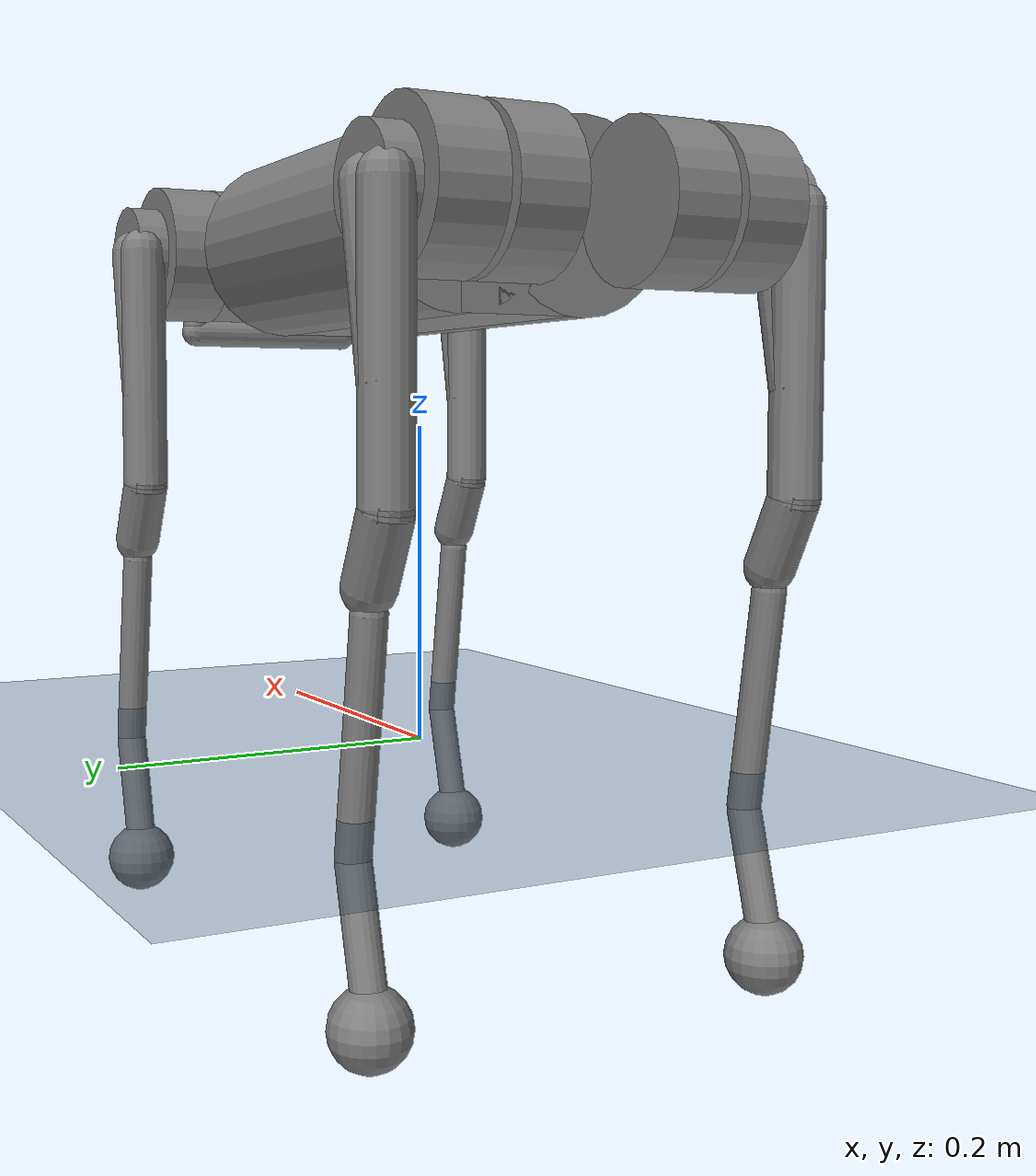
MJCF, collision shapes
<mujoco model="go1 scene">
  <include file="go1.xml"/>

  <statistic center="0 0 0" extent="0.8"/>

  <visual>
    <headlight diffuse="0.6 0.6 0.6" ambient="0.3 0.3 0.3" specular="0 0 0"/>
    <rgba haze="0.15 0.25 0.35 1"/>
    <global azimuth="120" elevation="-20"/>
  </visual>

  <asset>
    <texture type="skybox" builtin="gradient" rgb1="0.3 0.5 0.7" rgb2="0 0 0" width="512" height="3072"/>
    <texture type="2d" name="groundplane" builtin="checker" mark="edge" rgb1="0.2 0.3 0.4" rgb2="0.1 0.2 0.3"
      markrgb="0.8 0.8 0.8" width="300" height="300"/>
    <material name="groundplane" texture="groundplane" texuniform="true" texrepeat="5 5" reflectance="0.2"/>
  </asset>

  <worldbody>
    <light pos="0 0 1.5" dir="0 0 -1" directional="true"/>
    <geom name="floor" size="0 0 0.05" type="plane" material="groundplane"/>
  </worldbody>
</mujoco>

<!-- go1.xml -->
<mujoco model="go1_description">
    <compiler angle="radian" autolimits="true"/>

    <option cone="elliptic" impratio="100"/>

    <default>
        <default class="go1">
            <geom friction="0.6" margin="0.001" condim="1"/>
            <joint axis="0 1 0" damping="0.6" armature="0.01" frictionloss="0.2"/>
            <position kp="100" forcerange="-23.7 23.7"/>
            <default class="abduction">
                <joint axis="1 0 0" damping="1" range="-0.863 0.863"/>
                <motor ctrlrange="-45.43 45.43"/>
            </default>
            <default class="hip">
                <joint range="-0.686 4.501"/>
                <motor ctrlrange="-45.43 45.43"/>
            </default>
            <default class="knee">
                <joint range="-2.818 -0.888"/>
                <motor ctrlrange="-45.43 45.43"/>
            </default>
            <default class="visual">
                <geom type="mesh" contype="0" conaffinity="0" group="2" material="dark"/>
            </default>
            <default class="collision">
                <geom group="3" type="capsule"/>
                <default class="hip_left1">
                    <geom size="0.046 0.02" pos="0 0.045 0" quat="1 1 0 0" type="cylinder"/>
                </default>
                <default class="hip_left2">
                    <geom size="0.031 0.02" pos="0 0.065 0" quat="1 1 0 0" type="cylinder"/>
                </default>
                <default class="hip_left3">
                    <geom size="0.046 0.02" quat="1 1 0 0" type="cylinder"/>
                </default>
                <default class="hip_right1">
                    <geom size="0.046 0.02" pos="0 -0.045 0" quat="1 1 0 0" type="cylinder"/>
                </default>
                <default class="hip_right2">
                    <geom size="0.031 0.02" pos="0 -0.065 0" quat="1 1 0 0" type="cylinder"/>
                </default>
                <default class="hip_right3">
                    <geom size="0.046 0.02" quat="1 1 0 0" type="cylinder"/>
                </default>
                <default class="thigh1">
                    <geom size="0.015" fromto="-0.02 0 0 -0.02 0 -0.16"/>
                </default>
                <default class="thigh2">
                    <geom size="0.015" fromto="0 0 0 -0.02 0 -0.1"/>
                </default>
                <default class="thigh3">
                    <geom size="0.015" fromto="-0.02 0 -0.16 0 0 -0.2"/>
                </default>
                <default class="calf1">
                    <geom size="0.01" fromto="0 0 0 0.02 0 -0.13"/>
                </default>
                <default class="calf2">
                    <geom size="0.01" fromto="0.02 0 -0.13 0 0 -0.2"/>
                </default>
                <default class="foot">
                    <geom type="sphere" size="0.023" pos="0 0 -0.213" priority="1" solimp="0.015 1 0.031" condim="6"
                          friction="0.8 0.02 0.01"/>
                </default>
            </default>
        </default>
    </default>

    <asset>
        <material name="dark" rgba="0.1 0.1 0.1 1"/>
        <mesh class="go1" file="assets/trunk.stl"/>
        <mesh class="go1" file="assets/hip.stl"/>
        <mesh class="go1" file="assets/thigh_mirror.stl"/>
        <mesh class="go1" file="assets/calf.stl"/>
        <mesh class="go1" file="assets/thigh.stl"/>
    </asset>

    <worldbody>
        <light name="spotlight" mode="targetbodycom" target="trunk" pos="0 -1 2"/>
        <body name="trunk" pos="0 0 0.32" childclass="go1">
            <camera name="tracking" mode="trackcom" pos="0 -1 0.8" xyaxes="1 0 0 0 1 1"/>
            <site name="head" pos="0.3 0 0" rgba="1 0 0 1" size="0.02" group="5"/>
            <inertial pos="0.0223 0.002 -0.0005" quat="-0.00342088 0.705204 0.000106698 0.708996" mass="5.204"
                      diaginertia="0.0716565 0.0630105 0.0168101"/>
            <freejoint/>
            <geom class="visual" mesh="trunk"/>
            <geom class="collision" size="0.125 0.04 0.057" type="box"/>
            <geom class="collision" quat="1 0 1 0" pos="0 -0.04 0" size="0.058 0.125" type="cylinder"/>
            <geom class="collision" quat="1 0 1 0" pos="0 +0.04 0" size="0.058 0.125" type="cylinder"/>
            <geom class="collision" pos="0.25 0 0" size="0.005 0.06 0.05" type="box"/>
            <geom class="collision" pos="0.25 0.06 -0.01" size="0.009 0.035"/>
            <geom class="collision" pos="0.25 -0.06 -0.01" size="0.009 0.035"/>
            <geom class="collision" pos="0.25 0 -0.05" size="0.01 0.06" quat="1 1 0 0"/>
            <geom class="collision" pos="0.255 0 0.0355" size="0.021 0.052" quat="1 1 0 0"/>
            <site name="imu" pos="0 0 0"/>
            <body name="FL_hip" pos="0.1881 0.04675 0">
                <inertial pos="-0.0049166 -0.00762615 -8.865e-05" quat="0.482891 0.495027 0.514169 0.507341" mass="0.68"
                          diaginertia="0.000734064 0.000468438 0.000398719"/>
                <joint class="abduction" name="FL_hip_joint"/>
                <geom class="visual" mesh="hip"/>
                <geom class="hip_left1"/>
                <geom class="hip_left2"/>
                <body name="FL_thigh" pos="0 0.08 0">
                    <inertial pos="-0.00304722 -0.019315 -0.0305004" quat="0.753383 0.0775126 -0.0272313 0.65243"
                              mass="1.009"
                              diaginertia="0.00478717 0.00460903 0.000709268"/>
                    <joint class="hip" name="FL_thigh_joint"/>
                    <geom class="visual" mesh="thigh"/>
                    <geom class="thigh1"/>
                    <geom class="thigh2"/>
                    <geom class="thigh3"/>
                    <body name="FL_calf" pos="0 0 -0.213">
                        <inertial pos="0.00429862 0.000976676 -0.146197" quat="0.691246 0.00357467 0.00511118 0.722592"
                                  mass="0.195862" diaginertia="0.00149767 0.00148468 3.58427e-05"/>
                        <joint class="knee" name="FL_calf_joint"/>
                        <geom class="visual" mesh="calf"/>
                        <geom class="calf1"/>
                        <geom class="calf2"/>
                        <geom name="FL" class="foot"/>
                        <site name="FL" pos="0 0 -0.213" type="sphere" size="0.023" group="5"/>
                    </body>
                </body>
            </body>

            <body name="FR_hip" pos="0.1881 -0.04675 0">
                <inertial pos="-0.0049166 0.00762615 -8.865e-05" quat="0.507341 0.514169 0.495027 0.482891" mass="0.68"
                          diaginertia="0.000734064 0.000468438 0.000398719"/>
                <joint class="abduction" name="FR_hip_joint"/>
                <geom class="visual" mesh="hip" quat="1 0 0 0"/>
                <geom class="hip_right1"/>
                <geom class="hip_right2"/>
                <body name="FR_thigh" pos="0 -0.08 0">
                    <inertial pos="-0.00304722 0.019315 -0.0305004" quat="0.65243 -0.0272313 0.0775126 0.753383"
                              mass="1.009"
                              diaginertia="0.00478717 0.00460903 0.000709268"/>
                    <joint class="hip" name="FR_thigh_joint"/>
                    <geom class="visual" mesh="thigh_mirror"/>
                    <geom class="thigh1"/>
                    <geom class="thigh2"/>
                    <geom class="thigh3"/>
                    <body name="FR_calf" pos="0 0 -0.213">
                        <inertial pos="0.00429862 0.000976676 -0.146197" quat="0.691246 0.00357467 0.00511118 0.722592"
                                  mass="0.195862" diaginertia="0.00149767 0.00148468 3.58427e-05"/>
                        <joint class="knee" name="FR_calf_joint"/>
                        <geom class="visual" mesh="calf"/>
                        <geom class="calf1"/>
                        <geom class="calf2"/>
                        <geom name="FR" class="foot"/>
                        <site name="FR" pos="0 0 -0.213" type="sphere" size="0.023" group="5"/>
                    </body>
                </body>
            </body>

            <body name="RL_hip" pos="-0.1881 0.04675 0">
                <inertial pos="0.0049166 -0.00762615 -8.865e-05" quat="0.514169 0.507341 0.482891 0.495027" mass="0.68"
                          diaginertia="0.000734064 0.000468438 0.000398719"/>
                <joint class="abduction" name="RL_hip_joint"/>
                <geom class="visual" quat="0 0 1 0" mesh="hip"/>
                <geom class="hip_left1"/>
                <geom class="hip_left2"/>
                <geom class="hip_left3"/>
                <body name="RL_thigh" pos="0 0.08 0">
                    <inertial pos="-0.00304722 -0.019315 -0.0305004" quat="0.753383 0.0775126 -0.0272313 0.65243"
                              mass="1.009"
                              diaginertia="0.00478717 0.00460903 0.000709268"/>
                    <joint class="hip" name="RL_thigh_joint"/>
                    <geom class="visual" mesh="thigh"/>
                    <geom class="thigh1"/>
                    <geom class="thigh2"/>
                    <geom class="thigh3"/>
                    <body name="RL_calf" pos="0 0 -0.213">
                        <inertial pos="0.00429862 0.000976676 -0.146197" quat="0.691246 0.00357467 0.00511118 0.722592"
                                  mass="0.195862" diaginertia="0.00149767 0.00148468 3.58427e-05"/>
                        <joint class="knee" name="RL_calf_joint"/>
                        <geom class="visual" mesh="calf"/>
                        <geom class="calf1"/>
                        <geom class="calf2"/>
                        <geom name="RL" class="foot"/>
                        <site name="RL" pos="0 0 -0.213" type="sphere" size="0.023" group="5"/>
                    </body>
                </body>
            </body>

            <body name="RR_hip" pos="-0.1881 -0.04675 0">
                <inertial pos="0.0049166 0.00762615 -8.865e-05" quat="0.495027 0.482891 0.507341 0.514169" mass="0.68"
                          diaginertia="0.000734064 0.000468438 0.000398719"/>
                <joint class="abduction" name="RR_hip_joint"/>
                <geom class="visual" quat="0 0 0 -1" mesh="hip"/>
                <geom class="hip_right1"/>
                <geom class="hip_right2"/>
                <geom class="hip_right3"/>
                <body name="RR_thigh" pos="0 -0.08 0">
                    <inertial pos="-0.00304722 0.019315 -0.0305004" quat="0.65243 -0.0272313 0.0775126 0.753383"
                              mass="1.009"
                              diaginertia="0.00478717 0.00460903 0.000709268"/>
                    <joint class="hip" name="RR_thigh_joint"/>
                    <geom class="visual" mesh="thigh_mirror"/>
                    <geom class="thigh1"/>
                    <geom class="thigh2"/>
                    <geom class="thigh3"/>
                    <body name="RR_calf" pos="0 0 -0.213">
                        <inertial pos="0.00429862 0.000976676 -0.146197" quat="0.691246 0.00357467 0.00511118 0.722592"
                                  mass="0.195862" diaginertia="0.00149767 0.00148468 3.58427e-05"/>
                        <joint class="knee" name="RR_calf_joint"/>
                        <geom class="visual" mesh="calf"/>
                        <geom class="calf1"/>
                        <geom class="calf2"/>
                        <geom name="RR" class="foot"/>
                        <site name="RR" pos="0 0 -0.213" type="sphere" size="0.023" group="5"/>
                    </body>
                </body>
            </body>
        </body>
    </worldbody>

    <actuator>
        <motor class="abduction" name="FL_hip" joint="FL_hip_joint"/>
        <motor class="hip" name="FL_thigh" joint="FL_thigh_joint"/>
        <motor class="knee" name="FL_calf" joint="FL_calf_joint"/>
         <motor class="abduction" name="FR_hip" joint="FR_hip_joint"/>
        <motor class="hip" name="FR_thigh" joint="FR_thigh_joint"/>
        <motor class="knee" name="FR_calf" joint="FR_calf_joint"/>
        <motor class="abduction" name="RL_hip" joint="RL_hip_joint"/>
        <motor class="hip" name="RL_thigh" joint="RL_thigh_joint"/>
        <motor class="knee" name="RL_calf" joint="RL_calf_joint"/>
        <motor class="abduction" name="RR_hip" joint="RR_hip_joint"/>
        <motor class="hip" name="RR_thigh" joint="RR_thigh_joint"/>
        <motor class="knee" name="RR_calf" joint="RR_calf_joint"/>
    </actuator>

    <sensor>
        <accelerometer name="imu_acc" site="imu"/>
        <gyro name="imu_gyro" site="imu"/>
        <framepos name="imu_pos" objtype="site" objname="imu"/>
        <framequat name="imu_quat" objtype="site" objname="imu"/>
    </sensor>

    <keyframe>
        <key name="home" qpos="0 0 0.32 1 0 0 0 0 0.7 -1.4 0 0.7 -1.4 0 0.7 -1.4 0 0.7 -1.4"/>
        <key name="down" qpos="0 0 0.05 1 0 0 0 0.0 1.21 -2.794 0.0 1.21 -2.794 0.0 1.21 -2.794 0.0 1.21 -2.794"/>
    </keyframe>
</mujoco>
